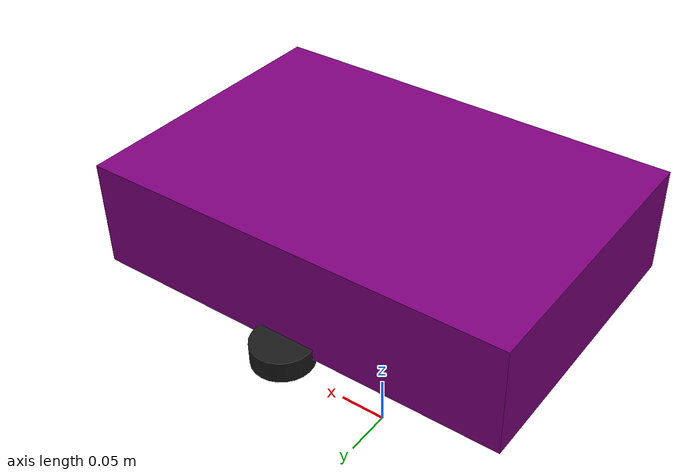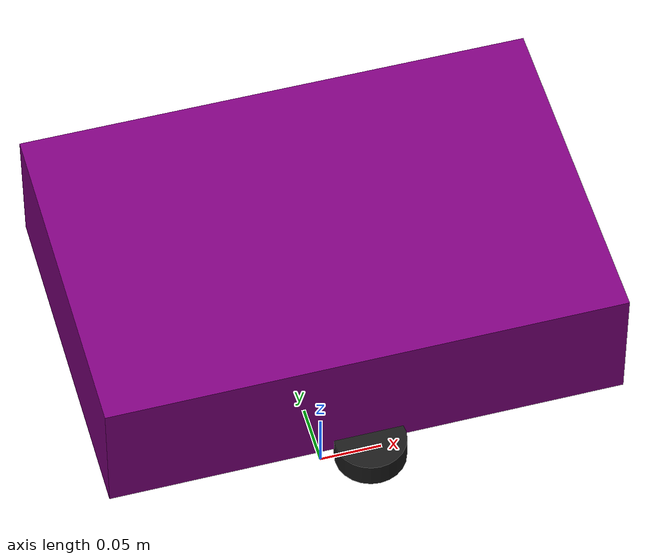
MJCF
<mujoco>
  <asset>
    <material name="purple" rgba="0.5 0.0 0.5 1"/>
    <material name="black" rgba="0.1 0.1 0.1 1"/>
  </asset>

  <worldbody>
    <body name="robot" pos="0 0 0.25"> <!-- 高さ合わせて本体を浮かす -->
      <!-- 本体（シャーシ） -->
      <geom type="box" size="0.20 0.135 0.05" material="purple"/> <!-- 半分サイズ -->

      <!-- 左車輪 -->
      <body name="left_wheel" pos="0 0.14 -0.05">
        <joint name="left_hinge" type="hinge" axis="0 -1 0" pos="0 0 0"/>
        <geom type="cylinder" size="0.0275 0.01" material="black"/>
      </body>

      <!-- 右車輪 -->
      <body name="right_wheel" pos="0 -0.14 -0.05">
        <joint name="right_hinge" type="hinge" axis="0 -1 0" pos="0 0 0"/>
        <geom type="cylinder" size="0.0275 0.01" material="black"/>
      </body>
    </body>
  </worldbody>

  <actuator>
    <motor name="left_motor" joint="left_hinge" gear="100"/>
    <motor name="right_motor" joint="right_hinge" gear="100"/>
  </actuator>
</mujoco>
